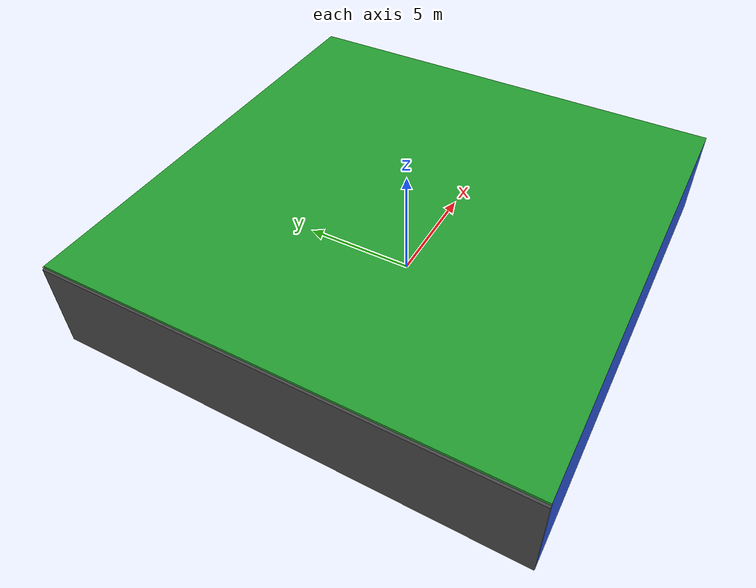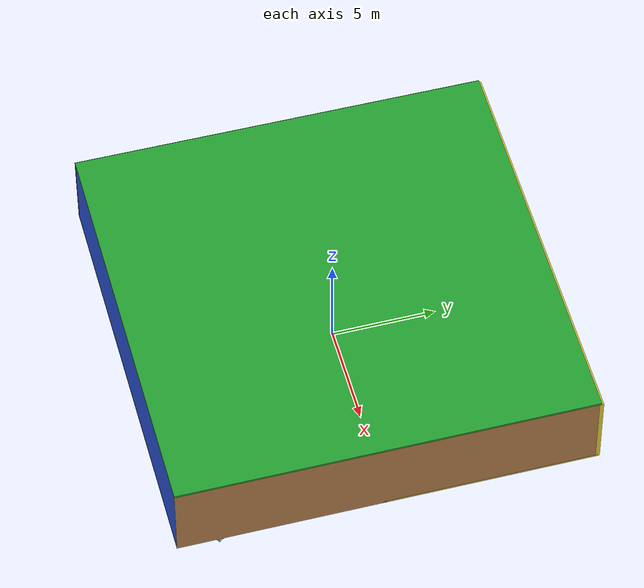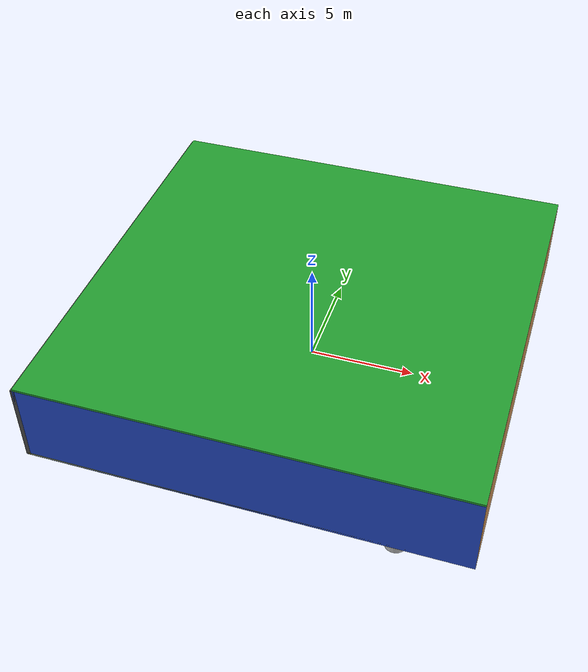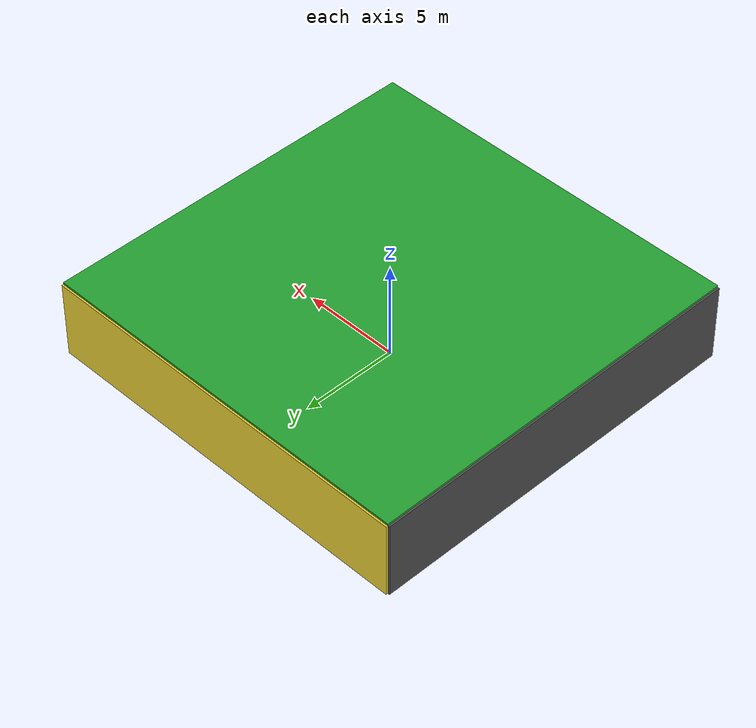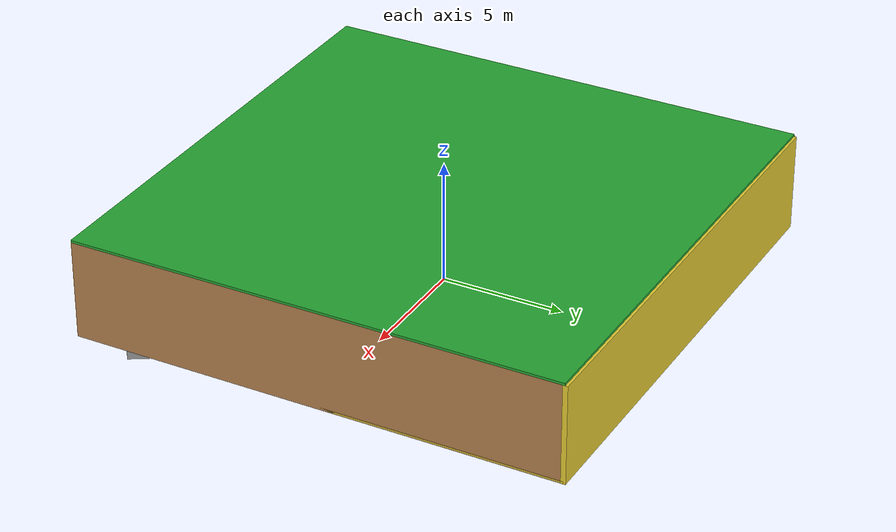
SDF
<sdf version="1.4">
 <world name="default">
  <physics type="ode">
   <max_step_size>0.001</max_step_size>
   <real_time_factor>1</real_time_factor>
   <real_time_update_rate>1000</real_time_update_rate>
   <gravity>0 0 -9.8</gravity>
  </physics>
  <scene><ambient>0.4 0.4 0.4 1</ambient><background>0.7 0.7 0.7 1</background><shadows>1</shadows></scene>
  <model name="Surrounding">
   <static>1</static>
   <link name="Ceiling">
    <collision name="Ceiling_Collision"><geometry><box><size>20 20 0.1</size></box></geometry></collision>
    <visual name="Ceiling_Visual">
     <geometry><box><size>20 20 0.1</size></box></geometry>
     <material>
      <script><uri>file://media/materials/scripts/gazebo.material</uri><name>Gazebo/GreenGlow</name></script>
     </material>
    </visual>
    <pose>0 0 4.05 0 0 0</pose>
   </link>
   <link name="Wall_South">
    <collision name="Wall_South_Collision">
     <geometry><box><size>20 0 4</size></box></geometry>
     <pose>0 0 2 0 -0 0</pose>
    </collision>
    <visual name="Wall_South_Visual">
     <pose>0 0 2 0 -0 0</pose>
     <geometry><box><size>20 0 4</size></box></geometry>
     <material>
      <script><uri>file://media/materials/scripts/gazebo.material</uri><name>Gazebo/BlueLaser</name></script>
     </material>
    </visual>
    <velocity_decay><linear>0</linear><angular>0</angular></velocity_decay>
    <pose>0 -10 0 0 -0 0</pose>
   </link>
   <link name="Wall_East">
    <collision name="Wall_21_Collision">
     <geometry><box><size>20 0 4</size></box></geometry>
     <pose>0 0 2 0 -0 0</pose>
    </collision>
    <visual name="Wall_21_Visual">
     <pose>0 0 2 0 -0 0</pose>
     <geometry><box><size>20 0 4</size></box></geometry>
     <material>
      <script><uri>file://media/materials/scripts/gazebo.material</uri><name>Gazebo/WoodPallet</name></script>
     </material>
    </visual>
    <velocity_decay><linear>0</linear><angular>0</angular></velocity_decay>
    <pose>10 0 0 0 -0 1.5708</pose>
   </link>
   <link name="Wall_North">
    <collision name="Wall_22_Collision">
     <geometry><box><size>20 0.2 4</size></box></geometry>
     <pose>0 0 2 0 -0 0</pose>
    </collision>
    <visual name="Wall_22_Visual">
     <pose>0 0 2 0 -0 0</pose>
     <geometry><box><size>20 0.2 4</size></box></geometry>
     <material>
      <script><uri>file://media/materials/scripts/gazebo.material</uri><name>Gazebo/ZincYellow</name></script>
     </material>
    </visual>
    <velocity_decay><linear>0</linear><angular>0</angular></velocity_decay>
    <pose>0 10 0 0 -0 0</pose>
   </link>
   <link name="Wall_West">
    <collision name="Wall_23_Collision">
     <geometry><box><size>20 0.2 4</size></box></geometry>
     <pose>0 0 2 0 -0 0</pose>
    </collision>
    <visual name="Wall_23_Visual">
     <pose>0 0 2 0 -0 0</pose>
     <geometry><box><size>20 0.2 4</size></box></geometry>
     <material>
      <script><uri>file://media/materials/scripts/gazebo.material</uri><name>Gazebo/DarkGrey</name></script>
     </material>
    </visual>
    <velocity_decay><linear>0</linear><angular>0</angular></velocity_decay>
    <pose>-10 0 0 0 0 -1.5708</pose>
   </link>
   <link name="Ground_link">
    <collision name="collision">
     <pose>0 0 .05 0 -0 0</pose>
     <geometry><box><size>20 20 0.1</size></box></geometry>
    </collision>
    <visual name="visual">
     <pose>0 0 .05 0 -0 0</pose>
     <geometry><box><size>20 20 0.1</size></box></geometry>
     <material>
      <script>
       <uri>file://media/materials/scripts/gazebo.material</uri>
       <name>Gazebo/YellowTransparent</name>
      </script>
     </material>
    </visual>
   </link>
   <static>1</static>
  </model>
  <spherical_coordinates>
   <surface_model>EARTH_WGS84</surface_model>
   <latitude_deg>0</latitude_deg>
   <longitude_deg>0</longitude_deg>
   <elevation>0</elevation>
   <heading_deg>0</heading_deg>
  </spherical_coordinates>
  <light name="lightball_0" type="diffuse">
   <diffuse>0.8 0.8 0.8 1</diffuse>
   <specular>0.2 0.2 0.2 1</specular>
   <attenuation>
    <range>100</range>
    <constant>0.7</constant>
    <linear>0.01</linear>
    <quadratic>0.001</quadratic>
   </attenuation>
   <direction>-0.5 0.1 -0.9</direction>
   <pose>5.43205583912 -6.05137096278 2.78586621148 0 0 0</pose>
  </light>
  <light name="lightball_1" type="diffuse">
   <diffuse>0.8 0.8 0.8 1</diffuse>
   <specular>0.2 0.2 0.2 1</specular>
   <attenuation>
    <range>100</range>
    <constant>0.7</constant>
    <linear>0.01</linear>
    <quadratic>0.001</quadratic>
   </attenuation>
   <direction>-0.5 0.1 -0.9</direction>
   <pose>-0.492554847428 8.03588938394 2.06039397999 0 0 0</pose>
  </light>
  <light name="lightball_2" type="diffuse">
   <diffuse>0.8 0.8 0.8 1</diffuse>
   <specular>0.2 0.2 0.2 1</specular>
   <attenuation>
    <range>100</range>
    <constant>0.7</constant>
    <linear>0.01</linear>
    <quadratic>0.001</quadratic>
   </attenuation>
   <direction>-0.5 0.1 -0.9</direction>
   <pose>6.74399220443 3.17329939392 3.54285097209 0 0 0</pose>
  </light>
  <light name="lightball_3" type="diffuse">
   <diffuse>0.8 0.8 0.8 1</diffuse>
   <specular>0.2 0.2 0.2 1</specular>
   <attenuation>
    <range>100</range>
    <constant>0.7</constant>
    <linear>0.01</linear>
    <quadratic>0.001</quadratic>
   </attenuation>
   <direction>-0.5 0.1 -0.9</direction>
   <pose>3.54844005627 1.56086476153 3.41253097043 0 0 0</pose>
  </light>
  <light name="lightball_4" type="diffuse">
   <diffuse>0.8 0.8 0.8 1</diffuse>
   <specular>0.2 0.2 0.2 1</specular>
   <attenuation>
    <range>100</range>
    <constant>0.7</constant>
    <linear>0.01</linear>
    <quadratic>0.001</quadratic>
   </attenuation>
   <direction>-0.5 0.1 -0.9</direction>
   <pose>9.56635810012 8.3840084088 1.96828158826 0 0 0</pose>
  </light>
  <light name="lightball_5" type="diffuse">
   <diffuse>0.8 0.8 0.8 1</diffuse>
   <specular>0.2 0.2 0.2 1</specular>
   <attenuation>
    <range>100</range>
    <constant>0.7</constant>
    <linear>0.01</linear>
    <quadratic>0.001</quadratic>
   </attenuation>
   <direction>-0.5 0.1 -0.9</direction>
   <pose>-3.26439124848 8.49719291847 2.87709918298 0 0 0</pose>
  </light>
  <light name="lightball_6" type="diffuse">
   <diffuse>0.8 0.8 0.8 1</diffuse>
   <specular>0.2 0.2 0.2 1</specular>
   <attenuation>
    <range>100</range>
    <constant>0.7</constant>
    <linear>0.01</linear>
    <quadratic>0.001</quadratic>
   </attenuation>
   <direction>-0.5 0.1 -0.9</direction>
   <pose>-5.37901565272 0.288647721805 0.772113734094 0 0 0</pose>
  </light>
  <light name="lightball_7" type="diffuse">
   <diffuse>0.8 0.8 0.8 1</diffuse>
   <specular>0.2 0.2 0.2 1</specular>
   <attenuation>
    <range>100</range>
    <constant>0.7</constant>
    <linear>0.01</linear>
    <quadratic>0.001</quadratic>
   </attenuation>
   <direction>-0.5 0.1 -0.9</direction>
   <pose>3.40690058602 0.860048786373 2.48455808022 0 0 0</pose>
  </light>
  <light name="lightball_8" type="diffuse">
   <diffuse>0.8 0.8 0.8 1</diffuse>
   <specular>0.2 0.2 0.2 1</specular>
   <attenuation>
    <range>100</range>
    <constant>0.7</constant>
    <linear>0.01</linear>
    <quadratic>0.001</quadratic>
   </attenuation>
   <direction>-0.5 0.1 -0.9</direction>
   <pose>6.5642213127 -8.15698899282 1.68303448812 0 0 0</pose>
  </light>
  <light name="lightball_9" type="diffuse">
   <diffuse>0.8 0.8 0.8 1</diffuse>
   <specular>0.2 0.2 0.2 1</specular>
   <attenuation>
    <range>100</range>
    <constant>0.7</constant>
    <linear>0.01</linear>
    <quadratic>0.001</quadratic>
   </attenuation>
   <direction>-0.5 0.1 -0.9</direction>
   <pose>4.7020724739 2.72590901076 2.12127196335 0 0 0</pose>
  </light>
  <light name="lightball_10" type="diffuse">
   <diffuse>0.8 0.8 0.8 1</diffuse>
   <specular>0.2 0.2 0.2 1</specular>
   <attenuation>
    <range>100</range>
    <constant>0.7</constant>
    <linear>0.01</linear>
    <quadratic>0.001</quadratic>
   </attenuation>
   <direction>-0.5 0.1 -0.9</direction>
   <pose>-7.34659188326 2.24669556056 2.9630091601 0 0 0</pose>
  </light>
  <light name="lightball_11" type="diffuse">
   <diffuse>0.8 0.8 0.8 1</diffuse>
   <specular>0.2 0.2 0.2 1</specular>
   <attenuation>
    <range>100</range>
    <constant>0.7</constant>
    <linear>0.01</linear>
    <quadratic>0.001</quadratic>
   </attenuation>
   <direction>-0.5 0.1 -0.9</direction>
   <pose>0.988871065954 -0.969842099739 2.18613879477 0 0 0</pose>
  </light>
  <include>
   <uri>model://textured_shapes</uri>
   <pose>-4.82318077507 -3.98759372207 0 0 0 2.65034295309</pose>
  </include>
  <include><uri>model://table</uri><pose>-3.61269843554 -0.4094626443 0 0 0 1.61962472573</pose></include>
  <include><uri>model://table</uri><pose>-3.44463104107 4.92494292581 0 0 0 2.50085821415</pose></include>
  <include>
   <uri>model://construction_cone</uri>
   <pose>2.5219964169 -2.31150416565 0 0 0 0.0750991786317</pose>
  </include>
  <include>
   <uri>model://robocup_3Dsim_goal</uri>
   <pose>1.46249273152 1.12820000326 0 0 0 0.0989323131688</pose>
  </include>
  <include><uri>model://cabinet</uri><pose>3.92046339718 -3.61996406437 0 0 0 1.6918245427</pose></include>
  <include>
   <uri>model://textured_shapes</uri>
   <pose>7.85920516592 -8.58370632522 0 0 0 2.12321419529</pose>
  </include>
  <include><uri>model://table</uri><pose>8.19767598861 -2.59829997921 0 0 0 3.06257142116</pose></include>
 </world>
</sdf>

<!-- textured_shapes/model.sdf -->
<sdf version="1.6">
  <model name="textured_shapes">
    <pose>0 0 0.5 0 0 0</pose>
    <link name="box">
      <pose>0 -1.5 0 0 0 0</pose>
      <collision name="collision">
        <geometry>
          <box>
            <size>1 1 1</size>
          </box>
        </geometry>
      </collision>
      <visual name="visual">
        <geometry>
          <box>
            <size>1 1 1</size>
          </box>
        </geometry>
        <material>
          <script>
            <uri>model://../model_source/models/textured_shapes/materials/scripts</uri>
            <uri>model://../model_source/models/textured_shapes/materials/textures</uri>
            <name>TexturedShape/Squares</name>
          </script>
        </material>
      </visual>
    </link>
    <link name="sphere">
      <collision name="collision">
        <geometry>
          <sphere>
            <radius>0.5</radius>
          </sphere>
        </geometry>
      </collision>
      <visual name="visual">
        <geometry>
          <sphere>
            <radius>0.5</radius>
          </sphere>
        </geometry>
        <material>
          <script>
            <uri>model://../model_source/models/textured_shapes/materials/scripts</uri>
            <uri>model://../model_source/models/textured_shapes/materials/textures</uri>
            <name>TexturedShape/Squares</name>
          </script>
        </material>
      </visual>
    </link>
    <link name="cylinder">
      <pose>0 1.5 0 0 0 0</pose>
      <collision name="collision">
        <geometry>
          <cylinder>
            <radius>0.5</radius>
            <length>1</length>
          </cylinder>
        </geometry>
      </collision>
      <visual name="visual">
        <geometry>
          <cylinder>
            <radius>0.5</radius>
            <length>1</length>
          </cylinder>
        </geometry>
        <material>
          <script>
            <uri>model://../model_source/models/textured_shapes/materials/scripts</uri>
            <uri>model://../model_source/models/textured_shapes/materials/textures</uri>
            <name>TexturedShape/Squares</name>
          </script>
        </material>
      </visual>
    </link>
  </model>
</sdf>

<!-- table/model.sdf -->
<sdf version="1.5">
  <model name="table">
    <static>true</static>
    <link name="link">
      <collision name="surface">
        <pose>0 0 1.0 0 0 0</pose>
        <geometry>
          <box>
            <size>1.5 0.8 0.03</size>
          </box>
        </geometry>
        <surface>
          <friction>
            <ode>
              <mu>0.6</mu>
              <mu2>0.6</mu2>
            </ode>
          </friction>
        </surface>
      </collision>
      <visual name="visual1">
        <pose>0 0 1.0 0 0 0</pose>
        <geometry>
          <box>
            <size>1.5 0.8 0.03</size>
          </box>
        </geometry>
        <material>
          <script>
            <uri>model://media/materials/scripts/gazebo.material</uri>
            <name>Gazebo/Wood</name>
          </script>
        </material>
      </visual>
      <collision name="front_left_leg">
        <pose>0.68 0.38 0.5 0 0 0</pose>
        <geometry>
          <cylinder>
            <radius>0.02</radius>
            <length>1.0</length>
          </cylinder>
        </geometry>
      </collision>
      <visual name="front_left_leg">
        <pose>0.68 0.38 0.5 0 0 0</pose>
        <geometry>
          <cylinder>
            <radius>0.02</radius>
            <length>1.0</length>
          </cylinder>
        </geometry>
        <material>
          <script>
            <uri>model://media/materials/scripts/gazebo.material</uri>
            <name>Gazebo/Grey</name>
          </script>
        </material>
      </visual>
      <collision name="front_right_leg">
        <pose>0.68 -0.38 0.5 0 0 0</pose>
        <geometry>
          <cylinder>
            <radius>0.02</radius>
            <length>1.0</length>
          </cylinder>
        </geometry>
      </collision>
      <visual name="front_right_leg">
        <pose>0.68 -0.38 0.5 0 0 0</pose>
        <geometry>
          <cylinder>
            <radius>0.02</radius>
            <length>1.0</length>
          </cylinder>
        </geometry>
        <material>
          <script>
            <uri>model://media/materials/scripts/gazebo.material</uri>
            <name>Gazebo/Grey</name>
          </script>
        </material>
      </visual>
      <collision name="back_right_leg">
        <pose>-0.68 -0.38 0.5 0 0 0</pose>
        <geometry>
          <cylinder>
            <radius>0.02</radius>
            <length>1.0</length>
          </cylinder>
        </geometry>
      </collision>
      <visual name="back_right_leg">
        <pose>-0.68 -0.38 0.5 0 0 0</pose>
        <geometry>
          <cylinder>
            <radius>0.02</radius>
            <length>1.0</length>
          </cylinder>
        </geometry>
        <material>
          <script>
            <uri>model://media/materials/scripts/gazebo.material</uri>
            <name>Gazebo/Grey</name>
          </script>
        </material>
      </visual>
      <collision name="back_left_leg">
        <pose>-0.68 0.38 0.5 0 0 0</pose>
        <geometry>
          <cylinder>
            <radius>0.02</radius>
            <length>1.0</length>
          </cylinder>
        </geometry>
      </collision>
      <visual name="back_left_leg">
        <pose>-0.68 0.38 0.5 0 0 0</pose>
        <geometry>
          <cylinder>
            <radius>0.02</radius>
            <length>1.0</length>
          </cylinder>
        </geometry>
        <material>
          <script>
            <uri>model://media/materials/scripts/gazebo.material</uri>
            <name>Gazebo/Grey</name>
          </script>
        </material>
      </visual>
    </link>
  </model>
</sdf>

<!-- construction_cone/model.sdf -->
<sdf version="1.5">
  <model name="Construction Cone">
    <link name="link">
      <collision name="collision">
        <geometry>
          <mesh>
            <scale>10 10 10</scale>
            <uri>file://isr-testbed/construction_cone/meshes/construction_cone.dae</uri>
          </mesh>
        </geometry>
      </collision>
      <visual name="visual">
        <geometry>
          <mesh>
            <scale>10 10 10</scale>
            <uri>file://isr-testbed/construction_cone/meshes/construction_cone.dae</uri>
          </mesh>
        </geometry>
      </visual>
    </link>
  </model>
</sdf>

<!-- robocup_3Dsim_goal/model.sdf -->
<sdf version="1.5">
  <model name="robocup_3d_goal">
    <static>true</static>
    <link name="left_post">
      <pose>0 1.05 0.45 0 0 0</pose>
      <collision name="collision">
        <geometry>
          <cylinder>
            <radius>0.05</radius>
            <length>0.9</length>
          </cylinder>
        </geometry>
      </collision>
      <visual name="visual">
        <geometry>
          <cylinder>
            <radius>0.05</radius>
            <length>0.9</length>
          </cylinder>
        </geometry>
        <material>
          <script>
            <uri>file://media/materials/scripts/gazebo.material</uri>
            <name>Gazebo/ZincYellow</name>
          </script>
        </material>
      </visual>
    </link>
    <link name="left_support_horiz_lower">
      <pose>0.30 1.05 0.01 0 0 0</pose>
      <collision name="collision">
        <geometry>
          <box>
            <size>0.50 0.02 0.02</size>
          </box>
        </geometry>
      </collision>
      <visual name="visual">
        <geometry>
          <box>
            <size>0.50 0.02 0.02</size>
          </box>
        </geometry>
        <material>
          <script>
            <uri>file://media/materials/scripts/gazebo.material</uri>
            <name>Gazebo/White</name>
          </script>
        </material>
      </visual>
    </link>
    <link name="left_support_horiz_upper">
      <pose>0.30 1.05 0.79 0 0 0</pose>
      <collision name="collision">
        <geometry>
          <box>
            <size>0.50 0.02 0.02</size>
          </box>
        </geometry>
      </collision>
      <visual name="visual">
        <geometry>
          <box>
            <size>0.50 0.02 0.02</size>
          </box>
        </geometry>
        <material>
          <script>
            <uri>file://media/materials/scripts/gazebo.material</uri>
            <name>Gazebo/White</name>
          </script>
        </material>
      </visual>
    </link>
    <link name="left_support_vertical">
      <pose>0.56 1.05 0.4 0 1.5708 0</pose>
      <collision name="collision">
        <geometry>
          <box>
            <size>0.80 0.02 0.02</size>
          </box>
        </geometry>
      </collision>
      <visual name="visual">
        <geometry>
          <box>
            <size>0.80 0.02 0.02</size>
          </box>
        </geometry>
        <material>
          <script>
            <uri>file://media/materials/scripts/gazebo.material</uri>
            <name>Gazebo/White</name>
          </script>
        </material>
      </visual>
    </link>
    <link name="right_support_horiz_lower">
      <pose>0.30 -1.05 0.01 0 0 0</pose>
      <collision name="collision">
        <geometry>
          <box>
            <size>0.50 0.02 0.02</size>
          </box>
        </geometry>
      </collision>
      <visual name="visual">
        <geometry>
          <box>
            <size>0.50 0.02 0.02</size>
          </box>
        </geometry>
        <material>
          <script>
            <uri>file://media/materials/scripts/gazebo.material</uri>
            <name>Gazebo/White</name>
          </script>
        </material>
      </visual>
    </link>
    <link name="right_support_horiz_upper">
      <pose>0.30 -1.05 0.79 0 0 0</pose>
      <collision name="collision">
        <geometry>
          <box>
            <size>0.50 0.02 0.02</size>
          </box>
        </geometry>
      </collision>
      <visual name="visual">
        <geometry>
          <box>
            <size>0.50 0.02 0.02</size>
          </box>
        </geometry>
        <material>
          <script>
            <uri>file://media/materials/scripts/gazebo.material</uri>
            <name>Gazebo/White</name>
          </script>
        </material>
      </visual>
    </link>
    <link name="right_support_vertical">
      <pose>0.56 -1.05 0.4 0 1.5708 0</pose>
      <collision name="collision">
        <geometry>
          <box>
            <size>0.80 0.02 0.02</size>
          </box>
        </geometry>
      </collision>
      <visual name="visual">
        <geometry>
          <box>
            <size>0.80 0.02 0.02</size>
          </box>
        </geometry>
        <material>
          <script>
            <uri>file://media/materials/scripts/gazebo.material</uri>
            <name>Gazebo/White</name>
          </script>
        </material>
      </visual>
    </link>
    <link name="center_support_horiz_lower">
      <pose>0.56 0 0.01 0 1.5708 0</pose>
      <collision name="collision">
        <geometry>
          <box>
            <size>0.02 2.08 0.02</size>
          </box>
        </geometry>
      </collision>
      <visual name="visual">
        <geometry>
          <box>
            <size>0.02 2.08 0.02</size>
          </box>
        </geometry>
        <material>
          <script>
            <uri>file://media/materials/scripts/gazebo.material</uri>
            <name>Gazebo/White</name>
          </script>
        </material>
      </visual>
    </link>
    <link name="center_support_horiz_upper">
      <pose>0.56 0 0.79 0 1.5708 0</pose>
      <collision name="collision">
        <geometry>
          <box>
            <size>0.02 2.08 0.02</size>
          </box>
        </geometry>
      </collision>
      <visual name="visual">
        <geometry>
          <box>
            <size>0.02 2.08 0.02</size>
          </box>
        </geometry>
        <material>
          <script>
            <uri>file://media/materials/scripts/gazebo.material</uri>
            <name>Gazebo/White</name>
          </script>
        </material>
      </visual>
    </link>
    <link name="right_post">
      <pose>0 -1.05 0.45 0 0 0</pose>
      <collision name="collision">
        <geometry>
          <cylinder>
            <radius>0.05</radius>
            <length>0.9</length>
          </cylinder>
        </geometry>
      </collision>
      <visual name="visual">
        <geometry>
          <cylinder>
            <radius>0.05</radius>
            <length>0.9</length>
          </cylinder>
        </geometry>
        <material>
          <script>
            <uri>file://media/materials/scripts/gazebo.material</uri>
            <name>Gazebo/ZincYellow</name>
          </script>
        </material>
      </visual>
    </link>
    <link name="crossbar">
      <pose>0 0 0.85 1.57 1.57 0</pose>
      <collision name="collision">
        <geometry>
          <cylinder>
            <radius>0.05</radius>
            <length>2.0</length>
          </cylinder>
        </geometry>
      </collision>
      <visual name="visual">
        <geometry>
          <cylinder>
            <radius>0.05</radius>
            <length>2.0</length>
          </cylinder>
        </geometry>
        <material>
          <script>
            <uri>file://media/materials/scripts/gazebo.material</uri>
            <name>Gazebo/ZincYellow</name>
          </script>
        </material>
      </visual>
    </link>
    <link name="center_net">
      <pose>0.56 0 0.40 0 0 0</pose>
      <collision name="collision">
        <geometry>
          <box>
            <size>0.01 2.1 0.80</size>
          </box>
        </geometry>
      </collision>
      <visual name="visual">
        <geometry>
          <box>
            <size>0.01 2.1 0.80</size>
          </box>
        </geometry>
        <material>
          <script>
            <uri>model://../model_source/models/robocup09_spl_field/materials/scripts/</uri>
            <uri>model://../model_source/models/robocup09_spl_field/materials/textures/</uri>
            <name>RoboCup/Net</name>
          </script>
        </material>
      </visual>
    </link>
    <link name="left_net">
      <pose>0.30 1.05 0.40 0 0 0</pose>
      <collision name="collision">
        <geometry>
          <box>
            <size>0.50 0.01 0.76</size>
          </box>
        </geometry>
      </collision>
      <visual name="visual">
        <geometry>
          <box>
            <size>0.50 0.01 0.76</size>
          </box>
        </geometry>
        <material>
          <script>
            <uri>model://../model_source/models/robocup09_spl_field/materials/scripts/</uri>
            <uri>model://../model_source/models/robocup09_spl_field/materials/textures/</uri>
            <name>RoboCup/Net</name>
          </script>
        </material>
      </visual>
    </link>
    <link name="right_net">
      <pose>0.30 -1.05 0.40 0 0 0</pose>
      <collision name="collision">
        <geometry>
          <box>
            <size>0.50 0.01 0.76</size>
          </box>
        </geometry>
      </collision>
      <visual name="visual">
        <geometry>
          <box>
            <size>0.50 0.01 0.76</size>
          </box>
        </geometry>
        <material>
          <script>
            <uri>model://../model_source/models/robocup09_spl_field/materials/scripts/</uri>
            <uri>model://../model_source/models/robocup09_spl_field/materials/textures/</uri>
            <name>RoboCup/Net</name>
          </script>
        </material>
      </visual>
    </link>
  </model>
</sdf>

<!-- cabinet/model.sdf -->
<sdf version="1.5">
  <model name="cabinet">
    <static>true</static>
    <link name="cabinet_bottom_plate">
      <inertial>
        <pose>0 0 -1 0 0 0</pose>
        <inertia>
          <ixx>2.050000</ixx>
          <ixy>0</ixy>
          <ixz>0</ixz>
          <iyy>2.050000</iyy>
          <iyz>0</iyz>
          <izz>2.050000</izz>
        </inertia>
        <mass>25.000000</mass>
      </inertial>
      <collision name="cabinet_bottom_plate_geom">
        <pose>0 0 0.010000 0 0 0</pose>
        <geometry>
          <box>
            <size>0.450000 0.450000 0.020000</size>
          </box>
        </geometry>
      </collision>
      <visual name="cabinet_bottom_plate_geom_visual">
        <pose>0 0 0.010000 0 0 0</pose>
        <geometry>
          <box>
            <size>0.450000 0.450000 0.020000</size>
          </box>
        </geometry>
        <material>
          <script>
            <uri>model://media/materials/scripts/gazebo.material</uri>
            <name>Gazebo/Wood</name>
          </script>
        </material>
      </visual>
      <collision name="cabinet_bottom_plate_geom_cabinet_back_plate">
        <pose>0.235000 0 0.510000 0 0 0</pose>
        <geometry>
          <box>
            <size>0.020000 0.450000 1.020000</size>
          </box>
        </geometry>
      </collision>
      <visual name="cabinet_bottom_plate_geom_cabinet_back_plate_visual">
        <pose>0.235000 0 0.510000 0 0 0</pose>
        <geometry>
          <box>
            <size>0.020000 0.450000 1.020000</size>
          </box>
        </geometry>
        <material>
          <script>
            <uri>model://media/materials/scripts/gazebo.material</uri>
            <name>Gazebo/Wood</name>
          </script>
        </material>
      </visual>
      <collision name="cabinet_bottom_plate_geom_cabinet_left_plate">
        <pose>0 0.235000 0.510000 0 0 0</pose>
        <geometry>
          <box>
            <size>0.450000 0.020000 1.020000</size>
          </box>
        </geometry>
      </collision>
      <visual name="cabinet_bottom_plate_geom_cabinet_left_plate_visual">
        <pose>0 0.235000 0.510000 0 0 0</pose>
        <geometry>
          <box>
            <size>0.450000 0.020000 1.020000</size>
          </box>
        </geometry>
        <material>
          <script>
            <uri>model://media/materials/scripts/gazebo.material</uri>
            <name>Gazebo/Wood</name>
          </script>
        </material>
      </visual>
      <collision name="cabinet_bottom_plate_geom_cabinet_middle_plate">
        <pose>0 0 0.510000 0 0 0</pose>
        <geometry>
          <box>
            <size>0.450000 0.450000 0.020000</size>
          </box>
        </geometry>
      </collision>
      <visual name="cabinet_bottom_plate_geom_cabinet_middle_plate_visual">
        <pose>0 0 0.510000 0 0 0</pose>
        <geometry>
          <box>
            <size>0.450000 0.450000 0.020000</size>
          </box>
        </geometry>
        <material>
          <script>
            <uri>model://media/materials/scripts/gazebo.material</uri>
            <name>Gazebo/Wood</name>
          </script>
        </material>
      </visual>
      <collision name="cabinet_bottom_plate_geom_cabinet_right_plate">
        <pose>0 -0.235000 0.510000 0 0 0</pose>
        <geometry>
          <box>
            <size>0.450000 0.020000 1.020000</size>
          </box>
        </geometry>
      </collision>
      <visual name="cabinet_bottom_plate_geom_cabinet_right_plate_visual">
        <pose>0 -0.235000 0.510000 0 0 0</pose>
        <geometry>
          <box>
            <size>0.450000 0.020000 1.020000</size>
          </box>
        </geometry>
        <material>
          <script>
            <uri>model://media/materials/scripts/gazebo.material</uri>
            <name>Gazebo/Wood</name>
          </script>
        </material>
      </visual>
      <collision name="cabinet_bottom_plate_geom_cabinet_top_plate">
        <pose>0 0 1.010000 0 0 0</pose>
        <geometry>
          <box>
            <size>0.450000 0.450000 0.020000</size>
          </box>
        </geometry>
      </collision>
      <visual name="cabinet_bottom_plate_geom_cabinet_top_plate_visual">
        <pose>0 0 1.010000 0 0 0</pose>
        <geometry>
          <box>
            <size>0.450000 0.450000 0.020000</size>
          </box>
        </geometry>
        <material>
          <script>
            <uri>model://media/materials/scripts/gazebo.material</uri>
            <name>Gazebo/Wood</name>
          </script>
        </material>
      </visual>
    </link>
  </model>
</sdf>
